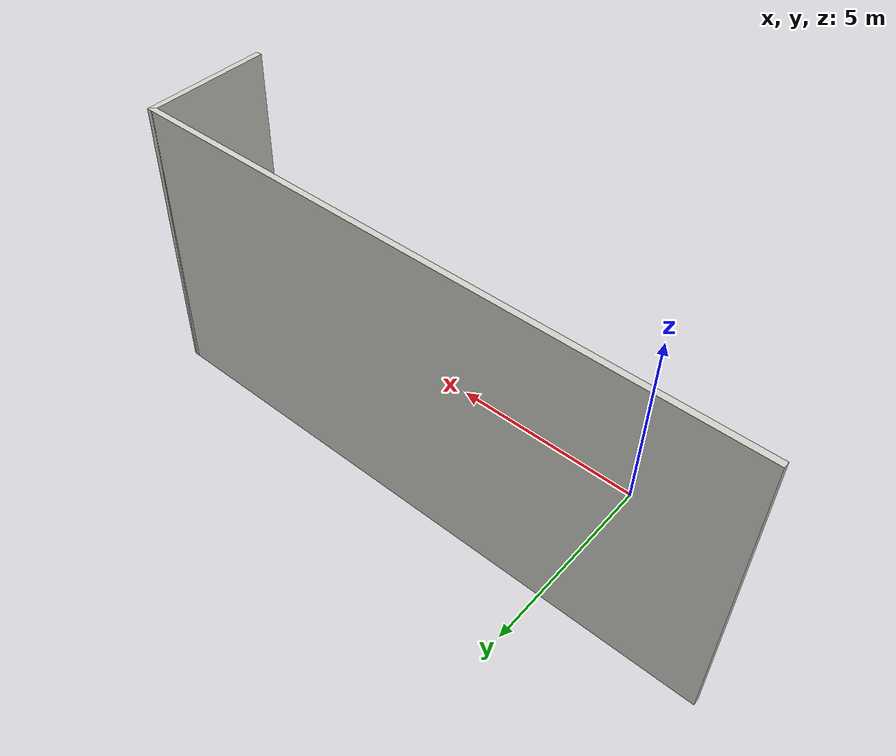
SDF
<?xml version='1.0'?>
<sdf version='1.6'>
  <model name='Untitled'>
    <pose frame=''>3.747 2.005 0 0 -0 0</pose>
    <link name='Wall_13'>
      <collision name='Wall_13_Collision'>
        <geometry>
          <box>
            <size>15.25 0.15 7.5</size>
          </box>
        </geometry>
        <pose frame=''>0 0 3.75 0 -0 0</pose>
      </collision>
      <visual name='Wall_13_Visual'>
        <pose frame=''>0 0 3.75 0 -0 0</pose>
        <geometry>
          <box>
            <size>15.25 0.15 7.5</size>
          </box>
        </geometry>
        <material>
          <script>
            <uri>file://media/materials/scripts/gazebo.material</uri>
            <name>Gazebo/CeilingTiled</name>
          </script>
          <ambient>0.760784 0.662745 0.627451 1</ambient>
        </material>
        <meta>
          <layer>0</layer>
        </meta>
      </visual>
      <pose frame=''>0 1.55 0 0 -0 0</pose>
    </link>
    <link name='Wall_15'>
      <collision name='Wall_15_Collision'>
        <geometry>
          <box>
            <size>3.25 0.15 7.5</size>
          </box>
        </geometry>
        <pose frame=''>0 0 3.75 0 -0 0</pose>
      </collision>
      <visual name='Wall_15_Visual'>
        <pose frame=''>0 0 3.75 0 -0 0</pose>
        <geometry>
          <box>
            <size>3.25 0.15 7.5</size>
          </box>
        </geometry>
        <material>
          <script>
            <uri>file://media/materials/scripts/gazebo.material</uri>
            <name>Gazebo/CeilingTiled</name>
          </script>
          <ambient>0.760784 0.662745 0.627451 1</ambient>
        </material>
        <meta>
          <layer>0</layer>
        </meta>
      </visual>
      <pose frame=''>7.55 0 0 0 -0 -1.5708</pose>
    </link>
    <static>1</static>
  </model>
</sdf>
